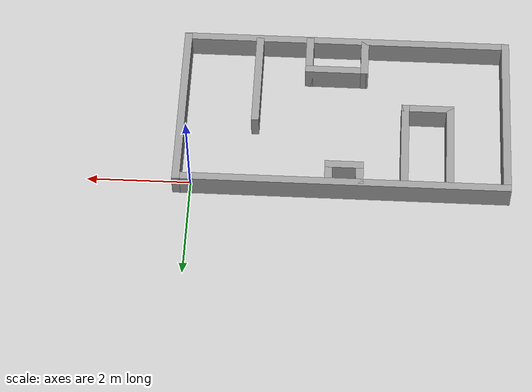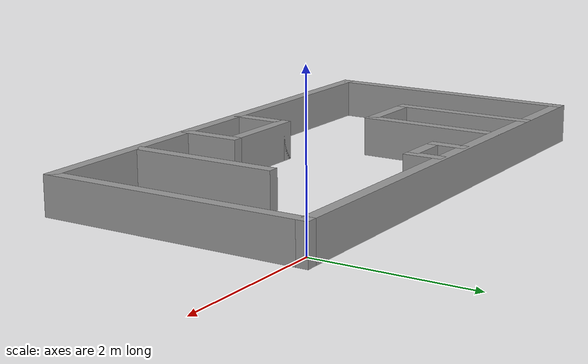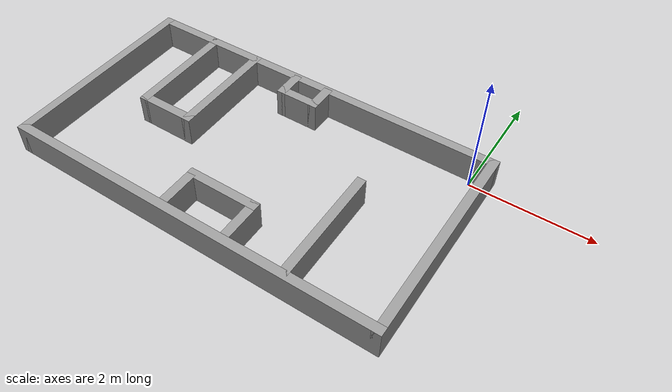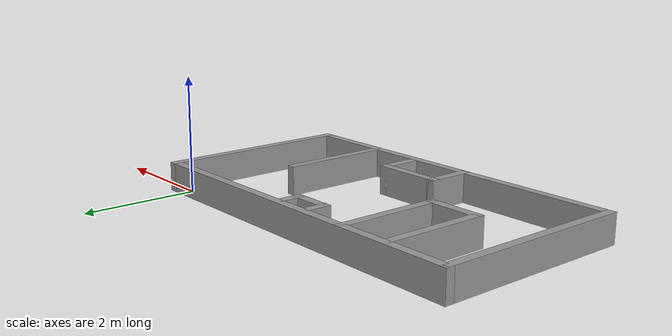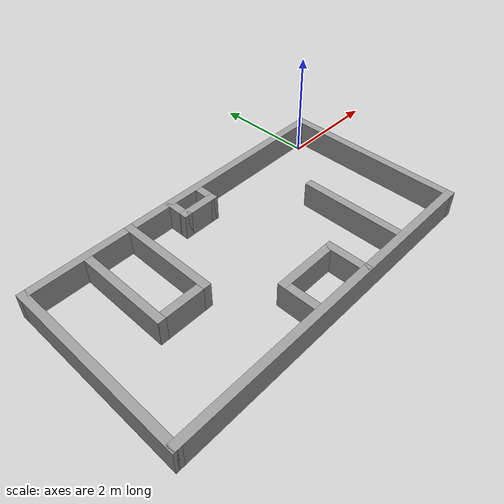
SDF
<?xml version='1.0'?>
<sdf version='1.6'>
  <model name='MapReal'>
    <pose frame=''>-2.925 -1.527 0 0 -0 0</pose>
    <link name='Wall_0'>
      <collision name='Wall_0_Collision'>
        <geometry>
          <box>
            <size>3.5 0.15 0.5</size>
          </box>
        </geometry>
        <pose frame=''>0 0 0.25 0 -0 0</pose>
      </collision>
      <visual name='Wall_0_Visual'>
        <pose frame=''>0 0 0.25 0 -0 0</pose>
        <geometry>
          <box>
            <size>3.5 0.15 0.5</size>
          </box>
        </geometry>
        <material>
          <script>
            <uri>file://media/materials/scripts/gazebo.material</uri>
            <name>Gazebo/Grey</name>
          </script>
          <ambient>1 1 1 1</ambient>
        </material>
      </visual>
      <pose frame=''>-3.175 0 0 0 0 -1.5708</pose>
    </link>
    <link name='Wall_1'>
      <collision name='Wall_1_Collision'>
        <geometry>
          <box>
            <size>6.5 0.15 0.5</size>
          </box>
        </geometry>
        <pose frame=''>0 0 0.25 0 -0 0</pose>
      </collision>
      <visual name='Wall_1_Visual'>
        <pose frame=''>0 0 0.25 0 -0 0</pose>
        <geometry>
          <box>
            <size>6.5 0.15 0.5</size>
          </box>
        </geometry>
        <material>
          <script>
            <uri>file://media/materials/scripts/gazebo.material</uri>
            <name>Gazebo/Grey</name>
          </script>
          <ambient>1 1 1 1</ambient>
        </material>
      </visual>
      <pose frame=''>0 -1.675 0 0 -0 0</pose>
    </link>
    <link name='Wall_11'>
      <collision name='Wall_11_Collision'>
        <geometry>
          <box>
            <size>0.8413 0.15 0.5</size>
          </box>
        </geometry>
        <pose frame=''>0 0 0.25 0 -0 0</pose>
      </collision>
      <visual name='Wall_11_Visual'>
        <pose frame=''>0 0 0.25 0 -0 0</pose>
        <geometry>
          <box>
            <size>0.8413 0.15 0.5</size>
          </box>
        </geometry>
        <material>
          <script>
            <uri>file://media/materials/scripts/gazebo.material</uri>
            <name>Gazebo/Grey</name>
          </script>
          <ambient>1 1 1 1</ambient>
        </material>
      </visual>
      <pose frame=''>-0.376 -1.31035 0 0 -0 1.5708</pose>
    </link>
    <link name='Wall_12'>
      <collision name='Wall_12_Collision'>
        <geometry>
          <box>
            <size>1.25 0.15 0.5</size>
          </box>
        </geometry>
        <pose frame=''>0 0 0.25 0 -0 0</pose>
      </collision>
      <visual name='Wall_12_Visual'>
        <pose frame=''>0 0 0.25 0 -0 0</pose>
        <geometry>
          <box>
            <size>1.25 0.15 0.5</size>
          </box>
        </geometry>
        <material>
          <script>
            <uri>file://media/materials/scripts/gazebo.material</uri>
            <name>Gazebo/Grey</name>
          </script>
          <ambient>1 1 1 1</ambient>
        </material>
      </visual>
      <pose frame=''>0.174 -0.9647 0 0 -0 0</pose>
    </link>
    <link name='Wall_13'>
      <collision name='Wall_13_Collision'>
        <geometry>
          <box>
            <size>0.8413 0.15 0.5</size>
          </box>
        </geometry>
        <pose frame=''>0 0 0.25 0 -0 0</pose>
      </collision>
      <visual name='Wall_13_Visual'>
        <pose frame=''>0 0 0.25 0 -0 0</pose>
        <geometry>
          <box>
            <size>0.8413 0.15 0.5</size>
          </box>
        </geometry>
        <material>
          <script>
            <uri>file://media/materials/scripts/gazebo.material</uri>
            <name>Gazebo/Grey</name>
          </script>
          <ambient>1 1 1 1</ambient>
        </material>
      </visual>
      <pose frame=''>0.724 -1.31035 0 0 0 -1.5708</pose>
    </link>
    <link name='Wall_15'>
      <collision name='Wall_15_Collision'>
        <geometry>
          <box>
            <size>0.5 0.15 0.5</size>
          </box>
        </geometry>
        <pose frame=''>0 0 0.25 0 -0 0</pose>
      </collision>
      <visual name='Wall_15_Visual'>
        <pose frame=''>0 0 0.25 0 -0 0</pose>
        <geometry>
          <box>
            <size>0.5 0.15 0.5</size>
          </box>
        </geometry>
        <material>
          <script>
            <uri>file://media/materials/scripts/gazebo.material</uri>
            <name>Gazebo/Grey</name>
          </script>
          <ambient>1 1 1 1</ambient>
        </material>
      </visual>
      <pose frame=''>-0.346 1.454 0 0 0 -1.5708</pose>
    </link>
    <link name='Wall_16'>
      <collision name='Wall_16_Collision'>
        <geometry>
          <box>
            <size>0.75 0.15 0.5</size>
          </box>
        </geometry>
        <pose frame=''>0 0 0.25 0 -0 0</pose>
      </collision>
      <visual name='Wall_16_Visual'>
        <pose frame=''>0 0 0.25 0 -0 0</pose>
        <geometry>
          <box>
            <size>0.75 0.15 0.5</size>
          </box>
        </geometry>
        <material>
          <script>
            <uri>file://media/materials/scripts/gazebo.material</uri>
            <name>Gazebo/Grey</name>
          </script>
          <ambient>1 1 1 1</ambient>
        </material>
      </visual>
      <pose frame=''>-0.046 1.279 0 0 -0 0</pose>
    </link>
    <link name='Wall_17'>
      <collision name='Wall_17_Collision'>
        <geometry>
          <box>
            <size>0.5 0.15 0.5</size>
          </box>
        </geometry>
        <pose frame=''>0 0 0.25 0 -0 0</pose>
      </collision>
      <visual name='Wall_17_Visual'>
        <pose frame=''>0 0 0.25 0 -0 0</pose>
        <geometry>
          <box>
            <size>0.5 0.15 0.5</size>
          </box>
        </geometry>
        <material>
          <script>
            <uri>file://media/materials/scripts/gazebo.material</uri>
            <name>Gazebo/Grey</name>
          </script>
          <ambient>1 1 1 1</ambient>
        </material>
      </visual>
      <pose frame=''>0.254 1.454 0 0 -0 1.5708</pose>
    </link>
    <link name='Wall_2'>
      <collision name='Wall_2_Collision'>
        <geometry>
          <box>
            <size>3.5 0.15 0.5</size>
          </box>
        </geometry>
        <pose frame=''>0 0 0.25 0 -0 0</pose>
      </collision>
      <visual name='Wall_2_Visual'>
        <pose frame=''>0 0 0.25 0 -0 0</pose>
        <geometry>
          <box>
            <size>3.5 0.15 0.5</size>
          </box>
        </geometry>
        <material>
          <script>
            <uri>file://media/materials/scripts/gazebo.material</uri>
            <name>Gazebo/Grey</name>
          </script>
          <ambient>1 1 1 1</ambient>
        </material>
      </visual>
      <pose frame=''>3.175 0 0 0 -0 1.5708</pose>
    </link>
    <link name='Wall_3'>
      <collision name='Wall_3_Collision'>
        <geometry>
          <box>
            <size>6.5 0.15 0.5</size>
          </box>
        </geometry>
        <pose frame=''>0 0 0.25 0 -0 0</pose>
      </collision>
      <visual name='Wall_3_Visual'>
        <pose frame=''>0 0 0.25 0 -0 0</pose>
        <geometry>
          <box>
            <size>6.5 0.15 0.5</size>
          </box>
        </geometry>
        <material>
          <script>
            <uri>file://media/materials/scripts/gazebo.material</uri>
            <name>Gazebo/Grey</name>
          </script>
          <ambient>1 1 1 1</ambient>
        </material>
      </visual>
      <pose frame=''>0 1.675 0 0 -0 3.14159</pose>
    </link>
    <link name='Wall_5'>
      <collision name='Wall_5_Collision'>
        <geometry>
          <box>
            <size>1.92065 0.15 0.5</size>
          </box>
        </geometry>
        <pose frame=''>0 0 0.25 0 -0 0</pose>
      </collision>
      <visual name='Wall_5_Visual'>
        <pose frame=''>0 0 0.25 0 -0 0</pose>
        <geometry>
          <box>
            <size>1.92065 0.15 0.5</size>
          </box>
        </geometry>
        <material>
          <script>
            <uri>file://media/materials/scripts/gazebo.material</uri>
            <name>Gazebo/Grey</name>
          </script>
          <ambient>1 1 1 1</ambient>
        </material>
      </visual>
      <pose frame=''>-2.08153 0.789675 0 0 0 -1.5708</pose>
    </link>
    <link name='Wall_6'>
      <collision name='Wall_6_Collision'>
        <geometry>
          <box>
            <size>1.02645 0.15 0.5</size>
          </box>
        </geometry>
        <pose frame=''>0 0 0.25 0 -0 0</pose>
      </collision>
      <visual name='Wall_6_Visual'>
        <pose frame=''>0 0 0.25 0 -0 0</pose>
        <geometry>
          <box>
            <size>1.02645 0.15 0.5</size>
          </box>
        </geometry>
        <material>
          <script>
            <uri>file://media/materials/scripts/gazebo.material</uri>
            <name>Gazebo/Grey</name>
          </script>
          <ambient>1 1 1 1</ambient>
        </material>
      </visual>
      <pose frame=''>-1.6433 -0.09565 0 0 -0 0</pose>
    </link>
    <link name='Wall_7'>
      <collision name='Wall_7_Collision'>
        <geometry>
          <box>
            <size>1.92065 0.15 0.5</size>
          </box>
        </geometry>
        <pose frame=''>0 0 0.25 0 -0 0</pose>
      </collision>
      <visual name='Wall_7_Visual'>
        <pose frame=''>0 0 0.25 0 -0 0</pose>
        <geometry>
          <box>
            <size>1.92065 0.15 0.5</size>
          </box>
        </geometry>
        <material>
          <script>
            <uri>file://media/materials/scripts/gazebo.material</uri>
            <name>Gazebo/Grey</name>
          </script>
          <ambient>1 1 1 1</ambient>
        </material>
      </visual>
      <pose frame=''>-1.20507 0.789675 0 0 -0 1.5708</pose>
    </link>
    <link name='Wall_9'>
      <collision name='Wall_9_Collision'>
        <geometry>
          <box>
            <size>2 0.15 0.5</size>
          </box>
        </geometry>
        <pose frame=''>0 0 0.25 0 -0 0</pose>
      </collision>
      <visual name='Wall_9_Visual'>
        <pose frame=''>0 0 0.25 0 -0 0</pose>
        <geometry>
          <box>
            <size>2 0.15 0.5</size>
          </box>
        </geometry>
        <material>
          <script>
            <uri>file://media/materials/scripts/gazebo.material</uri>
            <name>Gazebo/Grey</name>
          </script>
          <ambient>1 1 1 1</ambient>
        </material>
      </visual>
      <pose frame=''>1.729 -0.684 0 0 -0 1.5708</pose>
    </link>
    <static>1</static>
  </model>
</sdf>
